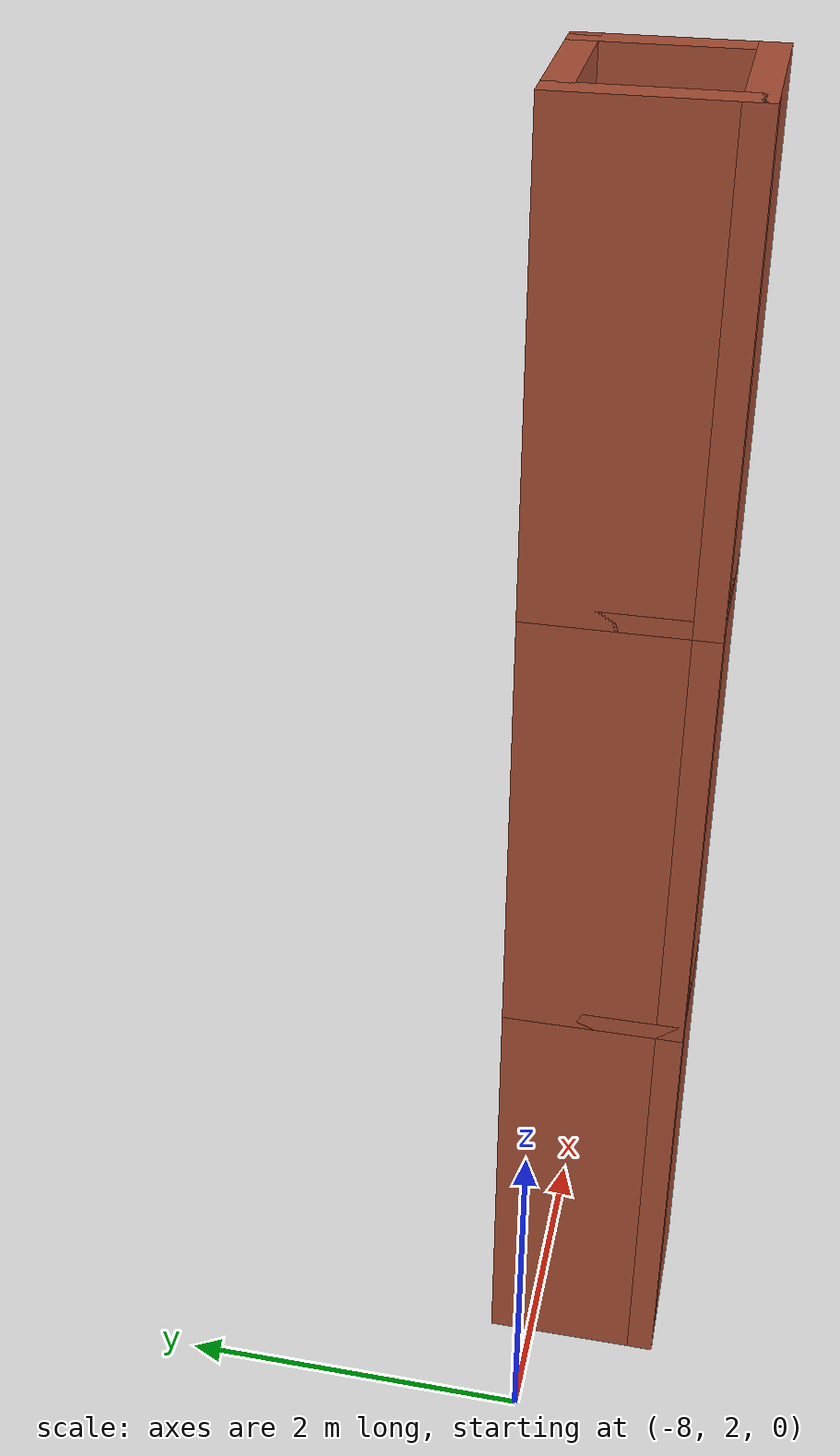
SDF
<?xml version='1.0'?>
<sdf version='1.7'>
  <model name='wall_model'>
    <pose>-3.71504 1.1234 0 0 -0 0</pose>
    <link name='Floor_3'>
      <collision name='Floor_3_Collision'>
        <geometry>
          <box>
            <size>1 1 0.1</size>
          </box>
        </geometry>
        <pose>0 0 0.05 0 -0 0</pose>
      </collision>
      <visual name='Floor_3_Visual'>
        <pose>0 0 0.05 0 -0 0</pose>
        <geometry>
          <box>
            <size>1 1 0.1</size>
          </box>
        </geometry>
        <material>
          <script>
            <uri>file://media/materials/scripts/gazebo.material</uri>
            <name>Gazebo/Bricks</name>
          </script>
          <ambient>1 1 1 1</ambient>
        </material>
        <meta>
          <layer>1</layer>
        </meta>
      </visual>
      <pose>-3.21504 0.623396 2.5 0 -0 0</pose>
    </link>
    <link name='Floor_4'>
      <collision name='Floor_4_Collision'>
        <geometry>
          <box>
            <size>1 1 0.1</size>
          </box>
        </geometry>
        <pose>0 0 0.05 0 -0 0</pose>
      </collision>
      <visual name='Floor_4_Visual'>
        <pose>0 0 0.05 0 -0 0</pose>
        <geometry>
          <box>
            <size>1 1 0.1</size>
          </box>
        </geometry>
        <material>
          <script>
            <uri>file://media/materials/scripts/gazebo.material</uri>
            <name>Gazebo/Bricks</name>
          </script>
          <ambient>1 1 1 1</ambient>
        </material>
        <meta>
          <layer>2</layer>
        </meta>
      </visual>
      <pose>-3.21504 0.623396 5 0 -0 0</pose>
    </link>
    <link name='Wall_19'>
      <collision name='Wall_19_Collision'>
        <geometry>
          <box>
            <size>1 0.15 2.5</size>
          </box>
        </geometry>
        <pose>0 0 1.25 0 -0 0</pose>
      </collision>
      <visual name='Wall_19_Visual'>
        <pose>0 0 1.25 0 -0 0</pose>
        <geometry>
          <box>
            <size>1 0.15 2.5</size>
          </box>
        </geometry>
        <material>
          <script>
            <uri>file://media/materials/scripts/gazebo.material</uri>
            <name>Gazebo/Bricks</name>
          </script>
          <ambient>1 1 1 1</ambient>
        </material>
        <meta>
          <layer>0</layer>
        </meta>
      </visual>
      <pose>-3.64004 0.623396 0 0 -0 1.5708</pose>
    </link>
    <link name='Wall_21'>
      <collision name='Wall_21_Collision'>
        <geometry>
          <box>
            <size>1 0.15 2.5</size>
          </box>
        </geometry>
        <pose>0 0 1.25 0 -0 0</pose>
      </collision>
      <visual name='Wall_21_Visual'>
        <pose>0 0 1.25 0 -0 0</pose>
        <geometry>
          <box>
            <size>1 0.15 2.5</size>
          </box>
        </geometry>
        <material>
          <script>
            <uri>file://media/materials/scripts/gazebo.material</uri>
            <name>Gazebo/Bricks</name>
          </script>
          <ambient>1 1 1 1</ambient>
        </material>
        <meta>
          <layer>0</layer>
        </meta>
      </visual>
      <pose>-3.21504 1.0484 0 0 -0 0</pose>
    </link>
    <link name='Wall_22'>
      <collision name='Wall_22_Collision'>
        <geometry>
          <box>
            <size>1 0.15 2.5</size>
          </box>
        </geometry>
        <pose>0 0 1.25 0 -0 0</pose>
      </collision>
      <visual name='Wall_22_Visual'>
        <pose>0 0 1.25 0 -0 0</pose>
        <geometry>
          <box>
            <size>1 0.15 2.5</size>
          </box>
        </geometry>
        <material>
          <script>
            <uri>file://media/materials/scripts/gazebo.material</uri>
            <name>Gazebo/Bricks</name>
          </script>
          <ambient>1 1 1 1</ambient>
        </material>
        <meta>
          <layer>0</layer>
        </meta>
      </visual>
      <pose>-2.79004 0.623396 0 0 -0 -1.5708</pose>
    </link>
    <link name='Wall_23'>
      <collision name='Wall_23_Collision'>
        <geometry>
          <box>
            <size>1 0.15 2.5</size>
          </box>
        </geometry>
        <pose>0 0 1.25 0 -0 0</pose>
      </collision>
      <visual name='Wall_23_Visual'>
        <pose>0 0 1.25 0 -0 0</pose>
        <geometry>
          <box>
            <size>1 0.15 2.5</size>
          </box>
        </geometry>
        <material>
          <script>
            <uri>file://media/materials/scripts/gazebo.material</uri>
            <name>Gazebo/Bricks</name>
          </script>
          <ambient>1 1 1 1</ambient>
        </material>
        <meta>
          <layer>0</layer>
        </meta>
      </visual>
      <pose>-3.21504 0.198396 0 0 -0 3.14159</pose>
    </link>
    <link name='Wall_25'>
      <collision name='Wall_25_Collision'>
        <geometry>
          <box>
            <size>1 0.15 2.5</size>
          </box>
        </geometry>
        <pose>0 0 1.25 0 -0 0</pose>
      </collision>
      <visual name='Wall_25_Visual'>
        <pose>0 0 1.25 0 -0 0</pose>
        <geometry>
          <box>
            <size>1 0.15 2.5</size>
          </box>
        </geometry>
        <material>
          <script>
            <uri>file://media/materials/scripts/gazebo.material</uri>
            <name>Gazebo/Bricks</name>
          </script>
          <ambient>1 1 1 1</ambient>
        </material>
        <meta>
          <layer>1</layer>
        </meta>
      </visual>
      <pose>-3.64004 0.623396 2.5 0 -0 1.5708</pose>
    </link>
    <link name='Wall_26'>
      <collision name='Wall_26_Collision'>
        <geometry>
          <box>
            <size>1 0.15 2.5</size>
          </box>
        </geometry>
        <pose>0 0 1.25 0 -0 0</pose>
      </collision>
      <visual name='Wall_26_Visual'>
        <pose>0 0 1.25 0 -0 0</pose>
        <geometry>
          <box>
            <size>1 0.15 2.5</size>
          </box>
        </geometry>
        <material>
          <script>
            <uri>file://media/materials/scripts/gazebo.material</uri>
            <name>Gazebo/Bricks</name>
          </script>
          <ambient>1 1 1 1</ambient>
        </material>
        <meta>
          <layer>1</layer>
        </meta>
      </visual>
      <pose>-3.21504 1.0484 2.5 0 -0 0</pose>
    </link>
    <link name='Wall_27'>
      <collision name='Wall_27_Collision'>
        <geometry>
          <box>
            <size>1 0.15 2.5</size>
          </box>
        </geometry>
        <pose>0 0 1.25 0 -0 0</pose>
      </collision>
      <visual name='Wall_27_Visual'>
        <pose>0 0 1.25 0 -0 0</pose>
        <geometry>
          <box>
            <size>1 0.15 2.5</size>
          </box>
        </geometry>
        <material>
          <script>
            <uri>file://media/materials/scripts/gazebo.material</uri>
            <name>Gazebo/Bricks</name>
          </script>
          <ambient>1 1 1 1</ambient>
        </material>
        <meta>
          <layer>1</layer>
        </meta>
      </visual>
      <pose>-2.79004 0.623396 2.5 0 -0 -1.5708</pose>
    </link>
    <link name='Wall_28'>
      <collision name='Wall_28_Collision'>
        <geometry>
          <box>
            <size>1 0.15 2.5</size>
          </box>
        </geometry>
        <pose>0 0 1.25 0 -0 0</pose>
      </collision>
      <visual name='Wall_28_Visual'>
        <pose>0 0 1.25 0 -0 0</pose>
        <geometry>
          <box>
            <size>1 0.15 2.5</size>
          </box>
        </geometry>
        <material>
          <script>
            <uri>file://media/materials/scripts/gazebo.material</uri>
            <name>Gazebo/Bricks</name>
          </script>
          <ambient>1 1 1 1</ambient>
        </material>
        <meta>
          <layer>1</layer>
        </meta>
      </visual>
      <pose>-3.21504 0.198396 2.5 0 -0 3.14159</pose>
    </link>
    <link name='Wall_29'>
      <collision name='Wall_29_Collision'>
        <geometry>
          <box>
            <size>1 0.15 2.5</size>
          </box>
        </geometry>
        <pose>0 0 1.25 0 -0 0</pose>
      </collision>
      <visual name='Wall_29_Visual'>
        <pose>0 0 1.25 0 -0 0</pose>
        <geometry>
          <box>
            <size>1 0.15 2.5</size>
          </box>
        </geometry>
        <material>
          <script>
            <uri>file://media/materials/scripts/gazebo.material</uri>
            <name>Gazebo/Bricks</name>
          </script>
          <ambient>1 1 1 1</ambient>
        </material>
        <meta>
          <layer>2</layer>
        </meta>
      </visual>
      <pose>-3.64004 0.623396 5 0 -0 1.5708</pose>
    </link>
    <link name='Wall_30'>
      <collision name='Wall_30_Collision'>
        <geometry>
          <box>
            <size>1 0.15 2.5</size>
          </box>
        </geometry>
        <pose>0 0 1.25 0 -0 0</pose>
      </collision>
      <visual name='Wall_30_Visual'>
        <pose>0 0 1.25 0 -0 0</pose>
        <geometry>
          <box>
            <size>1 0.15 2.5</size>
          </box>
        </geometry>
        <material>
          <script>
            <uri>file://media/materials/scripts/gazebo.material</uri>
            <name>Gazebo/Bricks</name>
          </script>
          <ambient>1 1 1 1</ambient>
        </material>
        <meta>
          <layer>2</layer>
        </meta>
      </visual>
      <pose>-3.21504 1.0484 5 0 -0 0</pose>
    </link>
    <link name='Wall_31'>
      <collision name='Wall_31_Collision'>
        <geometry>
          <box>
            <size>1 0.15 2.5</size>
          </box>
        </geometry>
        <pose>0 0 1.25 0 -0 0</pose>
      </collision>
      <visual name='Wall_31_Visual'>
        <pose>0 0 1.25 0 -0 0</pose>
        <geometry>
          <box>
            <size>1 0.15 2.5</size>
          </box>
        </geometry>
        <material>
          <script>
            <uri>file://media/materials/scripts/gazebo.material</uri>
            <name>Gazebo/Bricks</name>
          </script>
          <ambient>1 1 1 1</ambient>
        </material>
        <meta>
          <layer>2</layer>
        </meta>
      </visual>
      <pose>-2.79004 0.623396 5 0 -0 -1.5708</pose>
    </link>
    <link name='Wall_32'>
      <collision name='Wall_32_Collision'>
        <geometry>
          <box>
            <size>1 0.15 2.5</size>
          </box>
        </geometry>
        <pose>0 0 1.25 0 -0 0</pose>
      </collision>
      <visual name='Wall_32_Visual'>
        <pose>0 0 1.25 0 -0 0</pose>
        <geometry>
          <box>
            <size>1 0.15 2.5</size>
          </box>
        </geometry>
        <material>
          <script>
            <uri>file://media/materials/scripts/gazebo.material</uri>
            <name>Gazebo/Bricks</name>
          </script>
          <ambient>1 1 1 1</ambient>
        </material>
        <meta>
          <layer>2</layer>
        </meta>
      </visual>
      <pose>-3.21504 0.198396 5 0 -0 3.14159</pose>
    </link>
    <static>1</static>
  </model>
</sdf>
